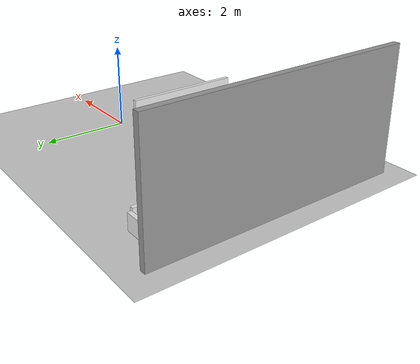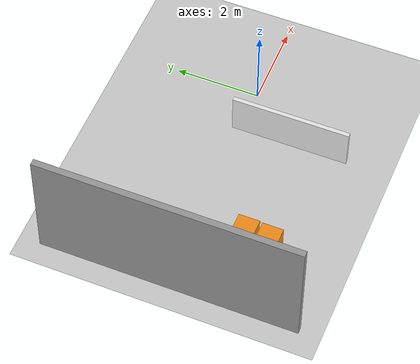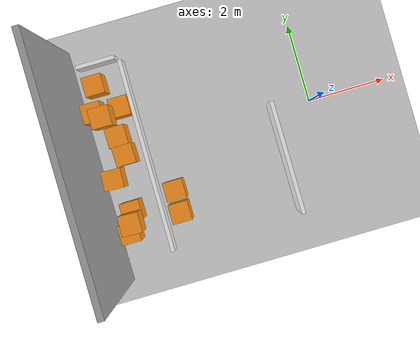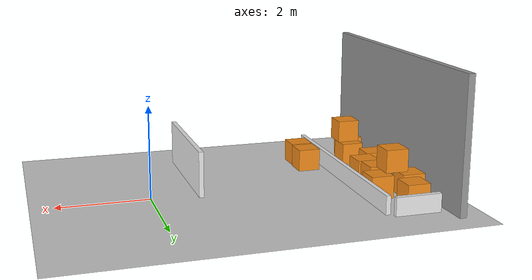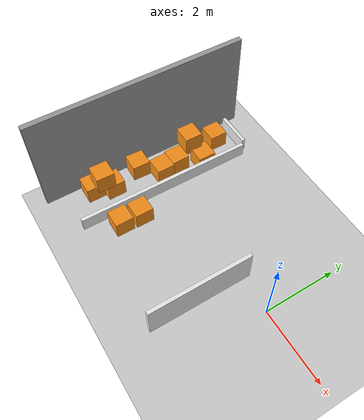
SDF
<sdf version="1.6">
 <world name="default">
  <model name="ground_plane">
   <static>1</static>
   <link name="link">
    <collision name="collision">
     <geometry><plane><normal>0 0 1</normal><size>100 100</size></plane></geometry>
     <surface>
      <contact><collide_bitmask>65535</collide_bitmask></contact>
      <friction><ode><mu>100</mu><mu2>50</mu2></ode></friction>
     </surface>
    </collision>
    <visual name="visual">
     <cast_shadows>0</cast_shadows>
     <geometry><plane><normal>0 0 1</normal><size>100 100</size></plane></geometry>
     <material>
      <script><uri>file://media/materials/scripts/gazebo.material</uri><name>Gazebo/Grey</name></script>
     </material>
    </visual>
   </link>
  </model>
  <model name="nrsl">
   <link name="Wall_3">
    <pose>-5.41 2.97 0 0 0 -1.5708</pose>
    <visual name="Wall_3_Visual">
     <pose>0 0 1.45 0 -0 0</pose>
     <geometry><box><size>6.09 0.15 2.9</size></box></geometry>
     <material>
      <script><uri>file://media/materials/scripts/gazebo.material</uri><name>Gazebo/Grey</name></script>
      <ambient>1 1 1 1</ambient>
     </material>
     <meta><layer>0</layer></meta>
    </visual>
    <collision name="Wall_3_Collision">
     <pose>0 0 1.45 0 -0 0</pose>
     <geometry><box><size>6.09 0.15 2.9</size></box></geometry>
     <surface>
      <friction>
       <ode><mu>1</mu><mu2>1</mu2><fdir1>0 0 0</fdir1><slip1>0</slip1><slip2>0</slip2></ode>
       <torsional>
        <coefficient>1</coefficient>
        <patch_radius>0</patch_radius>
        <surface_radius>0</surface_radius>
        <use_patch_radius>1</use_patch_radius>
        <ode><slip>0</slip></ode>
       </torsional>
      </friction>
      <bounce><restitution_coefficient>0</restitution_coefficient><threshold>1e+06</threshold></bounce>
      <contact>
       <collide_without_contact>0</collide_without_contact>
       <collide_without_contact_bitmask>1</collide_without_contact_bitmask>
       <collide_bitmask>1</collide_bitmask>
       <ode>
        <soft_cfm>0</soft_cfm>
        <soft_erp>0.2</soft_erp>
        <kp>1e+13</kp>
        <kd>1</kd>
        <max_vel>0.01</max_vel>
        <min_depth>0</min_depth>
       </ode>
       <bullet>
        <split_impulse>1</split_impulse>
        <split_impulse_penetration_threshold>-0.01</split_impulse_penetration_threshold>
        <soft_cfm>0</soft_cfm>
        <soft_erp>0.2</soft_erp>
        <kp>1e+13</kp>
        <kd>1</kd>
       </bullet>
      </contact>
     </surface>
    </collision>
   </link>
   <static>1</static>
   <pose>-0.282297 -3.10716 0 0 -0 0</pose>
  </model>
  <model name="fence1_1">
   <link name="link">
    <inertial>
     <mass>1</mass>
     <inertia>
      <ixx>0.166667</ixx>
      <ixy>0</ixy>
      <ixz>0</ixz>
      <iyy>0.166667</iyy>
      <iyz>0</iyz>
      <izz>0.166667</izz>
     </inertia>
    </inertial>
    <visual name="visual">
     <geometry><box><size>1 0.1 0.4</size></box></geometry>
     <material>
      <script><name>Gazebo/White</name><uri>file://media/materials/scripts/gazebo.material</uri></script>
     </material>
     <pose>0 0 0.2 0 -0 0</pose>
    </visual>
    <collision name="collision">
     <pose>0 0 0.2 0 -0 0</pose>
     <geometry><box><size>1 0.1 0.4</size></box></geometry>
     <surface>
      <friction>
       <ode><mu>1</mu><mu2>1</mu2><fdir1>0 0 0</fdir1><slip1>0</slip1><slip2>0</slip2></ode>
       <torsional>
        <coefficient>1</coefficient>
        <patch_radius>0</patch_radius>
        <surface_radius>0</surface_radius>
        <use_patch_radius>1</use_patch_radius>
        <ode><slip>0</slip></ode>
       </torsional>
      </friction>
      <bounce><restitution_coefficient>0</restitution_coefficient><threshold>1e+06</threshold></bounce>
      <contact>
       <collide_without_contact>0</collide_without_contact>
       <collide_without_contact_bitmask>1</collide_without_contact_bitmask>
       <collide_bitmask>1</collide_bitmask>
       <ode>
        <soft_cfm>0</soft_cfm>
        <soft_erp>0.2</soft_erp>
        <kp>1e+13</kp>
        <kd>1</kd>
        <max_vel>0.01</max_vel>
        <min_depth>0</min_depth>
       </ode>
       <bullet>
        <split_impulse>1</split_impulse>
        <split_impulse_penetration_threshold>-0.01</split_impulse_penetration_threshold>
        <soft_cfm>0</soft_cfm>
        <soft_erp>0.2</soft_erp>
        <kp>1e+13</kp>
        <kd>1</kd>
       </bullet>
      </contact>
     </surface>
    </collision>
   </link>
   <static>0</static>
   <pose>-4.95728 2.40507 -2e-06 0 5e-06 0</pose>
  </model>
  <model name="box_0">
   <link name="link">
    <inertial>
     <mass>1</mass>
     <inertia>
      <ixx>0.166667</ixx>
      <ixy>0</ixy>
      <ixz>0</ixz>
      <iyy>0.166667</iyy>
      <iyz>0</iyz>
      <izz>0.166667</izz>
     </inertia>
    </inertial>
    <visual name="visual">
     <geometry><box><size>0.5 0.5 0.5</size></box></geometry>
     <material>
      <script><name>Gazebo/Orange</name><uri>file://media/materials/scripts/gazebo.material</uri></script>
     </material>
     <pose>0 0 0.25 0 -0 0</pose>
    </visual>
    <collision name="collision">
     <pose>0 0 0.25 0 -0 0</pose>
     <geometry><box><size>0.5 0.5 0.5</size></box></geometry>
     <surface>
      <friction>
       <ode><mu>1</mu><mu2>1</mu2><fdir1>0 0 0</fdir1><slip1>0</slip1><slip2>0</slip2></ode>
       <torsional>
        <coefficient>1</coefficient>
        <patch_radius>0</patch_radius>
        <surface_radius>0</surface_radius>
        <use_patch_radius>1</use_patch_radius>
        <ode><slip>0</slip></ode>
       </torsional>
      </friction>
      <bounce><restitution_coefficient>0</restitution_coefficient><threshold>1e+06</threshold></bounce>
      <contact>
       <collide_without_contact>0</collide_without_contact>
       <collide_without_contact_bitmask>1</collide_without_contact_bitmask>
       <collide_bitmask>1</collide_bitmask>
       <ode>
        <soft_cfm>0</soft_cfm>
        <soft_erp>0.2</soft_erp>
        <kp>1e+13</kp>
        <kd>1</kd>
        <max_vel>0.01</max_vel>
        <min_depth>0</min_depth>
       </ode>
       <bullet>
        <split_impulse>1</split_impulse>
        <split_impulse_penetration_threshold>-0.01</split_impulse_penetration_threshold>
        <soft_cfm>0</soft_cfm>
        <soft_erp>0.2</soft_erp>
        <kp>1e+13</kp>
        <kd>1</kd>
       </bullet>
      </contact>
     </surface>
    </collision>
   </link>
   <static>0</static>
   <pose>-5.29935 -1.94691 -1e-05 -0 -0 -0.00029</pose>
  </model>
  <model name="box_1">
   <link name="link">
    <inertial>
     <mass>1</mass>
     <inertia>
      <ixx>0.166667</ixx>
      <ixy>0</ixy>
      <ixz>0</ixz>
      <iyy>0.166667</iyy>
      <iyz>0</iyz>
      <izz>0.166667</izz>
     </inertia>
    </inertial>
    <visual name="visual">
     <geometry><box><size>0.5 0.5 0.5</size></box></geometry>
     <material>
      <script><name>Gazebo/Orange</name><uri>file://media/materials/scripts/gazebo.material</uri></script>
     </material>
     <pose>0 0 0.25 0 -0 0</pose>
    </visual>
    <collision name="collision">
     <pose>0 0 0.25 0 -0 0</pose>
     <geometry><box><size>0.5 0.5 0.5</size></box></geometry>
     <surface>
      <friction>
       <ode><mu>1</mu><mu2>1</mu2><fdir1>0 0 0</fdir1><slip1>0</slip1><slip2>0</slip2></ode>
       <torsional>
        <coefficient>1</coefficient>
        <patch_radius>0</patch_radius>
        <surface_radius>0</surface_radius>
        <use_patch_radius>1</use_patch_radius>
        <ode><slip>0</slip></ode>
       </torsional>
      </friction>
      <bounce><restitution_coefficient>0</restitution_coefficient><threshold>1e+06</threshold></bounce>
      <contact>
       <collide_without_contact>0</collide_without_contact>
       <collide_without_contact_bitmask>1</collide_without_contact_bitmask>
       <collide_bitmask>1</collide_bitmask>
       <ode>
        <soft_cfm>0</soft_cfm>
        <soft_erp>0.2</soft_erp>
        <kp>1e+13</kp>
        <kd>1</kd>
        <max_vel>0.01</max_vel>
        <min_depth>0</min_depth>
       </ode>
       <bullet>
        <split_impulse>1</split_impulse>
        <split_impulse_penetration_threshold>-0.01</split_impulse_penetration_threshold>
        <soft_cfm>0</soft_cfm>
        <soft_erp>0.2</soft_erp>
        <kp>1e+13</kp>
        <kd>1</kd>
       </bullet>
      </contact>
     </surface>
    </collision>
   </link>
   <static>0</static>
   <pose>-5.10577 -1.43648 -3e-06 0 1.1e-05 0.000722</pose>
  </model>
  <model name="box_3">
   <link name="link">
    <inertial>
     <mass>1</mass>
     <inertia>
      <ixx>0.166667</ixx>
      <ixy>0</ixy>
      <ixz>0</ixz>
      <iyy>0.166667</iyy>
      <iyz>0</iyz>
      <izz>0.166667</izz>
     </inertia>
    </inertial>
    <visual name="visual">
     <geometry><box><size>0.5 0.5 0.5</size></box></geometry>
     <material>
      <script><name>Gazebo/Orange</name><uri>file://media/materials/scripts/gazebo.material</uri></script>
     </material>
     <pose>0 0 0.25 0 -0 0</pose>
    </visual>
    <collision name="collision">
     <pose>0 0 0.25 0 -0 0</pose>
     <geometry><box><size>0.5 0.5 0.5</size></box></geometry>
     <surface>
      <friction>
       <ode><mu>1</mu><mu2>1</mu2><fdir1>0 0 0</fdir1><slip1>0</slip1><slip2>0</slip2></ode>
       <torsional>
        <coefficient>1</coefficient>
        <patch_radius>0</patch_radius>
        <surface_radius>0</surface_radius>
        <use_patch_radius>1</use_patch_radius>
        <ode><slip>0</slip></ode>
       </torsional>
      </friction>
      <bounce><restitution_coefficient>0</restitution_coefficient><threshold>1e+06</threshold></bounce>
      <contact>
       <collide_without_contact>0</collide_without_contact>
       <collide_without_contact_bitmask>1</collide_without_contact_bitmask>
       <collide_bitmask>1</collide_bitmask>
       <ode>
        <soft_cfm>0</soft_cfm>
        <soft_erp>0.2</soft_erp>
        <kp>1e+13</kp>
        <kd>1</kd>
        <max_vel>0.01</max_vel>
        <min_depth>0</min_depth>
       </ode>
       <bullet>
        <split_impulse>1</split_impulse>
        <split_impulse_penetration_threshold>-0.01</split_impulse_penetration_threshold>
        <soft_cfm>0</soft_cfm>
        <soft_erp>0.2</soft_erp>
        <kp>1e+13</kp>
        <kd>1</kd>
       </bullet>
      </contact>
     </surface>
    </collision>
   </link>
   <static>0</static>
   <pose>-5.36531 1.2018 -0 0 0 -0.007949</pose>
  </model>
  <model name="box_4">
   <link name="link">
    <inertial>
     <mass>1</mass>
     <inertia>
      <ixx>0.166667</ixx>
      <ixy>0</ixy>
      <ixz>0</ixz>
      <iyy>0.166667</iyy>
      <iyz>0</iyz>
      <izz>0.166667</izz>
     </inertia>
    </inertial>
    <visual name="visual">
     <geometry><box><size>0.5 0.5 0.5</size></box></geometry>
     <material>
      <script><name>Gazebo/Orange</name><uri>file://media/materials/scripts/gazebo.material</uri></script>
     </material>
     <pose>0 0 0.25 0 -0 0</pose>
    </visual>
    <collision name="collision">
     <pose>0 0 0.25 0 -0 0</pose>
     <geometry><box><size>0.5 0.5 0.5</size></box></geometry>
     <surface>
      <friction>
       <ode><mu>1</mu><mu2>1</mu2><fdir1>0 0 0</fdir1><slip1>0</slip1><slip2>0</slip2></ode>
       <torsional>
        <coefficient>1</coefficient>
        <patch_radius>0</patch_radius>
        <surface_radius>0</surface_radius>
        <use_patch_radius>1</use_patch_radius>
        <ode><slip>0</slip></ode>
       </torsional>
      </friction>
      <bounce><restitution_coefficient>0</restitution_coefficient><threshold>1e+06</threshold></bounce>
      <contact>
       <collide_without_contact>0</collide_without_contact>
       <collide_without_contact_bitmask>1</collide_without_contact_bitmask>
       <collide_bitmask>1</collide_bitmask>
       <ode>
        <soft_cfm>0</soft_cfm>
        <soft_erp>0.2</soft_erp>
        <kp>1e+13</kp>
        <kd>1</kd>
        <max_vel>0.01</max_vel>
        <min_depth>0</min_depth>
       </ode>
       <bullet>
        <split_impulse>1</split_impulse>
        <split_impulse_penetration_threshold>-0.01</split_impulse_penetration_threshold>
        <soft_cfm>0</soft_cfm>
        <soft_erp>0.2</soft_erp>
        <kp>1e+13</kp>
        <kd>1</kd>
       </bullet>
      </contact>
     </surface>
    </collision>
   </link>
   <static>0</static>
   <pose>-4.66657 1.15749 -5.9e-05 0 0 -0.00751</pose>
  </model>
  <model name="box_2">
   <link name="link">
    <inertial>
     <mass>1</mass>
     <inertia>
      <ixx>0.166667</ixx>
      <ixy>0</ixy>
      <ixz>0</ixz>
      <iyy>0.166667</iyy>
      <iyz>0</iyz>
      <izz>0.166667</izz>
     </inertia>
    </inertial>
    <visual name="visual">
     <geometry><box><size>0.5 0.5 0.5</size></box></geometry>
     <material>
      <script><name>Gazebo/Orange</name><uri>file://media/materials/scripts/gazebo.material</uri></script>
     </material>
     <pose>0 0 0.25 0 -0 0</pose>
    </visual>
    <collision name="collision">
     <pose>0 0 0.25 0 -0 0</pose>
     <geometry><box><size>0.5 0.5 0.5</size></box></geometry>
     <surface>
      <friction>
       <ode><mu>1</mu><mu2>1</mu2><fdir1>0 0 0</fdir1><slip1>0</slip1><slip2>0</slip2></ode>
       <torsional>
        <coefficient>1</coefficient>
        <patch_radius>0</patch_radius>
        <surface_radius>0</surface_radius>
        <use_patch_radius>1</use_patch_radius>
        <ode><slip>0</slip></ode>
       </torsional>
      </friction>
      <bounce><restitution_coefficient>0</restitution_coefficient><threshold>1e+06</threshold></bounce>
      <contact>
       <collide_without_contact>0</collide_without_contact>
       <collide_without_contact_bitmask>1</collide_without_contact_bitmask>
       <collide_bitmask>1</collide_bitmask>
       <ode>
        <soft_cfm>0</soft_cfm>
        <soft_erp>0.2</soft_erp>
        <kp>1e+13</kp>
        <kd>1</kd>
        <max_vel>0.01</max_vel>
        <min_depth>0</min_depth>
       </ode>
       <bullet>
        <split_impulse>1</split_impulse>
        <split_impulse_penetration_threshold>-0.01</split_impulse_penetration_threshold>
        <soft_cfm>0</soft_cfm>
        <soft_erp>0.2</soft_erp>
        <kp>1e+13</kp>
        <kd>1</kd>
       </bullet>
      </contact>
     </surface>
    </collision>
   </link>
   <static>0</static>
   <pose>-5.14223 1.85055 -6e-06 -2.3e-05 -0 -0.000152</pose>
  </model>
  <model name="box_5">
   <link name="link">
    <inertial>
     <mass>1</mass>
     <inertia>
      <ixx>0.166667</ixx>
      <ixy>0</ixy>
      <ixz>0</ixz>
      <iyy>0.166667</iyy>
      <iyz>0</iyz>
      <izz>0.166667</izz>
     </inertia>
    </inertial>
    <visual name="visual">
     <geometry><box><size>0.5 0.5 0.5</size></box></geometry>
     <material>
      <script><name>Gazebo/Orange</name><uri>file://media/materials/scripts/gazebo.material</uri></script>
     </material>
     <pose>0 0 0.25 0 -0 0</pose>
    </visual>
    <collision name="collision">
     <pose>0 0 0.25 0 -0 0</pose>
     <geometry><box><size>0.5 0.5 0.5</size></box></geometry>
     <surface>
      <friction>
       <ode><mu>1</mu><mu2>1</mu2><fdir1>0 0 0</fdir1><slip1>0</slip1><slip2>0</slip2></ode>
       <torsional>
        <coefficient>1</coefficient>
        <patch_radius>0</patch_radius>
        <surface_radius>0</surface_radius>
        <use_patch_radius>1</use_patch_radius>
        <ode><slip>0</slip></ode>
       </torsional>
      </friction>
      <bounce><restitution_coefficient>0</restitution_coefficient><threshold>1e+06</threshold></bounce>
      <contact>
       <collide_without_contact>0</collide_without_contact>
       <collide_without_contact_bitmask>1</collide_without_contact_bitmask>
       <collide_bitmask>1</collide_bitmask>
       <ode>
        <soft_cfm>0</soft_cfm>
        <soft_erp>0.2</soft_erp>
        <kp>1e+13</kp>
        <kd>1</kd>
        <max_vel>0.01</max_vel>
        <min_depth>0</min_depth>
       </ode>
       <bullet>
        <split_impulse>1</split_impulse>
        <split_impulse_penetration_threshold>-0.01</split_impulse_penetration_threshold>
        <soft_cfm>0</soft_cfm>
        <soft_erp>0.2</soft_erp>
        <kp>1e+13</kp>
        <kd>1</kd>
       </bullet>
      </contact>
     </surface>
    </collision>
   </link>
   <static>0</static>
   <pose>-4.93993 0.467553 -2.6e-05 -1e-05 1e-06 0.013925</pose>
  </model>
  <model name="box_6">
   <link name="link">
    <inertial>
     <mass>1</mass>
     <inertia>
      <ixx>0.166667</ixx>
      <ixy>0</ixy>
      <ixz>0</ixz>
      <iyy>0.166667</iyy>
      <iyz>0</iyz>
      <izz>0.166667</izz>
     </inertia>
    </inertial>
    <visual name="visual">
     <geometry><box><size>0.5 0.5 0.5</size></box></geometry>
     <material>
      <script><name>Gazebo/Orange</name><uri>file://media/materials/scripts/gazebo.material</uri></script>
     </material>
     <pose>0 0 0.25 0 -0 0</pose>
    </visual>
    <collision name="collision">
     <pose>0 0 0.25 0 -0 0</pose>
     <geometry><box><size>0.5 0.5 0.5</size></box></geometry>
     <surface>
      <friction>
       <ode><mu>1</mu><mu2>1</mu2><fdir1>0 0 0</fdir1><slip1>0</slip1><slip2>0</slip2></ode>
       <torsional>
        <coefficient>1</coefficient>
        <patch_radius>0</patch_radius>
        <surface_radius>0</surface_radius>
        <use_patch_radius>1</use_patch_radius>
        <ode><slip>0</slip></ode>
       </torsional>
      </friction>
      <bounce><restitution_coefficient>0</restitution_coefficient><threshold>1e+06</threshold></bounce>
      <contact>
       <collide_without_contact>0</collide_without_contact>
       <collide_without_contact_bitmask>1</collide_without_contact_bitmask>
       <collide_bitmask>1</collide_bitmask>
       <ode>
        <soft_cfm>0</soft_cfm>
        <soft_erp>0.2</soft_erp>
        <kp>1e+13</kp>
        <kd>1</kd>
        <max_vel>0.01</max_vel>
        <min_depth>0</min_depth>
       </ode>
       <bullet>
        <split_impulse>1</split_impulse>
        <split_impulse_penetration_threshold>-0.01</split_impulse_penetration_threshold>
        <soft_cfm>0</soft_cfm>
        <soft_erp>0.2</soft_erp>
        <kp>1e+13</kp>
        <kd>1</kd>
       </bullet>
      </contact>
     </surface>
    </collision>
   </link>
   <static>0</static>
   <pose>-5.33455 -0.542764 -6e-06 0 -2.6e-05 -0.040836</pose>
  </model>
  <model name="box_1_0">
   <link name="link">
    <inertial>
     <mass>1</mass>
     <inertia>
      <ixx>0.166667</ixx>
      <ixy>0</ixy>
      <ixz>0</ixz>
      <iyy>0.166667</iyy>
      <iyz>0</iyz>
      <izz>0.166667</izz>
     </inertia>
    </inertial>
    <visual name="visual">
     <geometry><box><size>0.5 0.5 0.5</size></box></geometry>
     <material>
      <script><name>Gazebo/Orange</name><uri>file://media/materials/scripts/gazebo.material</uri></script>
     </material>
     <pose>0 0 0.25 0 -0 0</pose>
    </visual>
    <collision name="collision">
     <pose>0 0 0.25 0 -0 0</pose>
     <geometry><box><size>0.5 0.5 0.5</size></box></geometry>
     <surface>
      <friction>
       <ode><mu>1</mu><mu2>1</mu2><fdir1>0 0 0</fdir1><slip1>0</slip1><slip2>0</slip2></ode>
       <torsional>
        <coefficient>1</coefficient>
        <patch_radius>0</patch_radius>
        <surface_radius>0</surface_radius>
        <use_patch_radius>1</use_patch_radius>
        <ode><slip>0</slip></ode>
       </torsional>
      </friction>
      <bounce><restitution_coefficient>0</restitution_coefficient><threshold>1e+06</threshold></bounce>
      <contact>
       <collide_without_contact>0</collide_without_contact>
       <collide_without_contact_bitmask>1</collide_without_contact_bitmask>
       <collide_bitmask>1</collide_bitmask>
       <ode>
        <soft_cfm>0</soft_cfm>
        <soft_erp>0.2</soft_erp>
        <kp>1e+13</kp>
        <kd>1</kd>
        <max_vel>0.01</max_vel>
        <min_depth>0</min_depth>
       </ode>
       <bullet>
        <split_impulse>1</split_impulse>
        <split_impulse_penetration_threshold>-0.01</split_impulse_penetration_threshold>
        <soft_cfm>0</soft_cfm>
        <soft_erp>0.2</soft_erp>
        <kp>1e+13</kp>
        <kd>1</kd>
       </bullet>
      </contact>
     </surface>
    </collision>
   </link>
   <static>0</static>
   <pose>-4.88602 -0.032148 -0 -1e-06 1e-06 0.013203</pose>
  </model>
  <model name="box_1_1">
   <link name="link">
    <inertial>
     <mass>1</mass>
     <inertia>
      <ixx>0.166667</ixx>
      <ixy>0</ixy>
      <ixz>0</ixz>
      <iyy>0.166667</iyy>
      <iyz>0</iyz>
      <izz>0.166667</izz>
     </inertia>
    </inertial>
    <visual name="visual">
     <geometry><box><size>0.5 0.5 0.5</size></box></geometry>
     <material>
      <script><name>Gazebo/Orange</name><uri>file://media/materials/scripts/gazebo.material</uri></script>
     </material>
     <pose>0 0 0.75 0 -0 0</pose>
    </visual>
    <collision name="collision">
     <pose>0 0 0.75 0 -0 0</pose>
     <geometry><box><size>0.5 0.5 0.5</size></box></geometry>
     <surface>
      <friction>
       <ode><mu>1</mu><mu2>1</mu2><fdir1>0 0 0</fdir1><slip1>0</slip1><slip2>0</slip2></ode>
       <torsional>
        <coefficient>1</coefficient>
        <patch_radius>0</patch_radius>
        <surface_radius>0</surface_radius>
        <use_patch_radius>1</use_patch_radius>
        <ode><slip>0</slip></ode>
       </torsional>
      </friction>
      <bounce><restitution_coefficient>0</restitution_coefficient><threshold>1e+06</threshold></bounce>
      <contact>
       <collide_without_contact>0</collide_without_contact>
       <collide_without_contact_bitmask>1</collide_without_contact_bitmask>
       <collide_bitmask>1</collide_bitmask>
       <ode>
        <soft_cfm>0</soft_cfm>
        <soft_erp>0.2</soft_erp>
        <kp>1e+13</kp>
        <kd>1</kd>
        <max_vel>0.01</max_vel>
        <min_depth>0</min_depth>
       </ode>
       <bullet>
        <split_impulse>1</split_impulse>
        <split_impulse_penetration_threshold>-0.01</split_impulse_penetration_threshold>
        <soft_cfm>0</soft_cfm>
        <soft_erp>0.2</soft_erp>
        <kp>1e+13</kp>
        <kd>1</kd>
       </bullet>
      </contact>
     </surface>
    </collision>
   </link>
   <static>0</static>
   <pose>-5.07554 0.970381 -6e-06 3.2e-05 2.5e-05 -0.013753</pose>
  </model>
  <model name="box_1_2">
   <link name="link">
    <inertial>
     <mass>1</mass>
     <inertia>
      <ixx>0.166667</ixx>
      <ixy>0</ixy>
      <ixz>0</ixz>
      <iyy>0.166667</iyy>
      <iyz>0</iyz>
      <izz>0.166667</izz>
     </inertia>
    </inertial>
    <visual name="visual">
     <geometry><box><size>0.5 0.5 0.5</size></box></geometry>
     <material>
      <script><name>Gazebo/Orange</name><uri>file://media/materials/scripts/gazebo.material</uri></script>
     </material>
     <pose>0 0 0.75 0 -0 0</pose>
    </visual>
    <collision name="collision">
     <pose>0 0 0.75 0 -0 0</pose>
     <geometry><box><size>0.5 0.5 0.5</size></box></geometry>
     <surface>
      <friction>
       <ode><mu>1</mu><mu2>1</mu2><fdir1>0 0 0</fdir1><slip1>0</slip1><slip2>0</slip2></ode>
       <torsional>
        <coefficient>1</coefficient>
        <patch_radius>0</patch_radius>
        <surface_radius>0</surface_radius>
        <use_patch_radius>1</use_patch_radius>
        <ode><slip>0</slip></ode>
       </torsional>
      </friction>
      <bounce><restitution_coefficient>0</restitution_coefficient><threshold>1e+06</threshold></bounce>
      <contact>
       <collide_without_contact>0</collide_without_contact>
       <collide_without_contact_bitmask>1</collide_without_contact_bitmask>
       <collide_bitmask>1</collide_bitmask>
       <ode>
        <soft_cfm>0</soft_cfm>
        <soft_erp>0.2</soft_erp>
        <kp>1e+13</kp>
        <kd>1</kd>
        <max_vel>0.01</max_vel>
        <min_depth>0</min_depth>
       </ode>
       <bullet>
        <split_impulse>1</split_impulse>
        <split_impulse_penetration_threshold>-0.01</split_impulse_penetration_threshold>
        <soft_cfm>0</soft_cfm>
        <soft_erp>0.2</soft_erp>
        <kp>1e+13</kp>
        <kd>1</kd>
       </bullet>
      </contact>
     </surface>
    </collision>
   </link>
   <static>0</static>
   <pose>-5.10088 -1.68539 -4e-06 3.1e-05 -1e-05 -0.026227</pose>
  </model>
  <model name="box">
   <link name="link">
    <inertial>
     <mass>1</mass>
     <inertia>
      <ixx>0.166667</ixx>
      <ixy>0</ixy>
      <ixz>0</ixz>
      <iyy>0.166667</iyy>
      <iyz>0</iyz>
      <izz>0.166667</izz>
     </inertia>
    </inertial>
    <visual name="visual">
     <geometry><box><size>0.5 0.5 0.5</size></box></geometry>
     <material>
      <script><name>Gazebo/Orange</name><uri>file://media/materials/scripts/gazebo.material</uri></script>
     </material>
     <pose>0 0 0.25 0 -0 0</pose>
    </visual>
    <collision name="collision">
     <pose>0 0 0.25 0 -0 0</pose>
     <geometry><box><size>0.5 0.5 0.5</size></box></geometry>
     <surface>
      <friction>
       <ode><mu>1</mu><mu2>1</mu2><fdir1>0 0 0</fdir1><slip1>0</slip1><slip2>0</slip2></ode>
       <torsional>
        <coefficient>1</coefficient>
        <patch_radius>0</patch_radius>
        <surface_radius>0</surface_radius>
        <use_patch_radius>1</use_patch_radius>
        <ode><slip>0</slip></ode>
       </torsional>
      </friction>
      <bounce><restitution_coefficient>0</restitution_coefficient><threshold>1e+06</threshold></bounce>
      <contact>
       <collide_without_contact>0</collide_without_contact>
       <collide_without_contact_bitmask>1</collide_without_contact_bitmask>
       <collide_bitmask>1</collide_bitmask>
       <ode>
        <soft_cfm>0</soft_cfm>
        <soft_erp>0.2</soft_erp>
        <kp>1e+13</kp>
        <kd>1</kd>
        <max_vel>0.01</max_vel>
        <min_depth>0</min_depth>
       </ode>
       <bullet>
        <split_impulse>1</split_impulse>
        <split_impulse_penetration_threshold>-0.01</split_impulse_penetration_threshold>
        <soft_cfm>0</soft_cfm>
        <soft_erp>0.2</soft_erp>
        <kp>1e+13</kp>
        <kd>1</kd>
       </bullet>
      </contact>
     </surface>
    </collision>
   </link>
   <static>0</static>
   <pose>-3.9436 -1.79604 -0 0 -0 0</pose>
  </model>
  <model name="box_7">
   <link name="link">
    <inertial>
     <mass>1</mass>
     <inertia>
      <ixx>0.166667</ixx>
      <ixy>0</ixy>
      <ixz>0</ixz>
      <iyy>0.166667</iyy>
      <iyz>0</iyz>
      <izz>0.166667</izz>
     </inertia>
    </inertial>
    <visual name="visual">
     <geometry><box><size>0.5 0.5 0.5</size></box></geometry>
     <material>
      <script><name>Gazebo/Orange</name><uri>file://media/materials/scripts/gazebo.material</uri></script>
     </material>
     <pose>0 0 0.25 0 -0 0</pose>
    </visual>
    <collision name="collision">
     <pose>0 0 0.25 0 -0 0</pose>
     <geometry><box><size>0.5 0.5 0.5</size></box></geometry>
     <surface>
      <friction>
       <ode><mu>1</mu><mu2>1</mu2><fdir1>0 0 0</fdir1><slip1>0</slip1><slip2>0</slip2></ode>
       <torsional>
        <coefficient>1</coefficient>
        <patch_radius>0</patch_radius>
        <surface_radius>0</surface_radius>
        <use_patch_radius>1</use_patch_radius>
        <ode><slip>0</slip></ode>
       </torsional>
      </friction>
      <bounce><restitution_coefficient>0</restitution_coefficient><threshold>1e+06</threshold></bounce>
      <contact>
       <collide_without_contact>0</collide_without_contact>
       <collide_without_contact_bitmask>1</collide_without_contact_bitmask>
       <collide_bitmask>1</collide_bitmask>
       <ode>
        <soft_cfm>0</soft_cfm>
        <soft_erp>0.2</soft_erp>
        <kp>1e+13</kp>
        <kd>1</kd>
        <max_vel>0.01</max_vel>
        <min_depth>0</min_depth>
       </ode>
       <bullet>
        <split_impulse>1</split_impulse>
        <split_impulse_penetration_threshold>-0.01</split_impulse_penetration_threshold>
        <soft_cfm>0</soft_cfm>
        <soft_erp>0.2</soft_erp>
        <kp>1e+13</kp>
        <kd>1</kd>
       </bullet>
      </contact>
     </surface>
    </collision>
   </link>
   <static>0</static>
   <pose>-3.92492 -1.23113 -0 0 -0 -3.7e-05</pose>
  </model>
  <model name="fence">
   <link name="link">
    <inertial>
     <mass>1</mass>
     <inertia>
      <ixx>0.166667</ixx>
      <ixy>0</ixy>
      <ixz>0</ixz>
      <iyy>0.166667</iyy>
      <iyz>0</iyz>
      <izz>0.166667</izz>
     </inertia>
    </inertial>
    <pose>0 0 0 0 -0 1.57</pose>
    <visual name="visual">
     <geometry><box><size>5 0.1 0.4</size></box></geometry>
     <material>
      <script><name>Gazebo/White</name><uri>file://media/materials/scripts/gazebo.material</uri></script>
     </material>
     <pose>0 0 0.2 0 -0 0</pose>
    </visual>
    <collision name="collision">
     <pose>0 0 0.2 0 -0 0</pose>
     <geometry><box><size>5 0.1 0.4</size></box></geometry>
     <surface>
      <friction>
       <ode><mu>1</mu><mu2>1</mu2><fdir1>0 0 0</fdir1><slip1>0</slip1><slip2>0</slip2></ode>
       <torsional>
        <coefficient>1</coefficient>
        <patch_radius>0</patch_radius>
        <surface_radius>0</surface_radius>
        <use_patch_radius>1</use_patch_radius>
        <ode><slip>0</slip></ode>
       </torsional>
      </friction>
      <bounce><restitution_coefficient>0</restitution_coefficient><threshold>1e+06</threshold></bounce>
      <contact>
       <collide_without_contact>0</collide_without_contact>
       <collide_without_contact_bitmask>1</collide_without_contact_bitmask>
       <collide_bitmask>1</collide_bitmask>
       <ode>
        <soft_cfm>0</soft_cfm>
        <soft_erp>0.2</soft_erp>
        <kp>1e+13</kp>
        <kd>1</kd>
        <max_vel>0.01</max_vel>
        <min_depth>0</min_depth>
       </ode>
       <bullet>
        <split_impulse>1</split_impulse>
        <split_impulse_penetration_threshold>-0.01</split_impulse_penetration_threshold>
        <soft_cfm>0</soft_cfm>
        <soft_erp>0.2</soft_erp>
        <kp>1e+13</kp>
        <kd>1</kd>
       </bullet>
      </contact>
     </surface>
    </collision>
   </link>
   <static>0</static>
   <pose>-4.3761 -0.197227 -4e-06 2e-06 1.3e-05 -0.00637</pose>
  </model>
  <model name="obstacle">
   <link name="link">
    <inertial>
     <mass>1</mass>
     <inertia>
      <ixx>0.166667</ixx>
      <ixy>0</ixy>
      <ixz>0</ixz>
      <iyy>0.166667</iyy>
      <iyz>0</iyz>
      <izz>0.166667</izz>
     </inertia>
    </inertial>
    <visual name="visual">
     <geometry><box><size>0.1 2.8 1</size></box></geometry>
     <material>
      <script><name>Gazebo/White</name><uri>file://media/materials/scripts/gazebo.material</uri></script>
     </material>
     <pose>0 0 0.5 0 -0 0</pose>
    </visual>
    <collision name="collision">
     <pose>0 0 0.5 0 -0 0</pose>
     <geometry><box><size>0.1 2.8 1</size></box></geometry>
     <surface>
      <friction>
       <ode><mu>1</mu><mu2>1</mu2><fdir1>0 0 0</fdir1><slip1>0</slip1><slip2>0</slip2></ode>
       <torsional>
        <coefficient>1</coefficient>
        <patch_radius>0</patch_radius>
        <surface_radius>0</surface_radius>
        <use_patch_radius>1</use_patch_radius>
        <ode><slip>0</slip></ode>
       </torsional>
      </friction>
      <bounce><restitution_coefficient>0</restitution_coefficient><threshold>1e+06</threshold></bounce>
      <contact>
       <collide_without_contact>0</collide_without_contact>
       <collide_without_contact_bitmask>1</collide_without_contact_bitmask>
       <collide_bitmask>1</collide_bitmask>
       <ode>
        <soft_cfm>0</soft_cfm>
        <soft_erp>0.2</soft_erp>
        <kp>1e+13</kp>
        <kd>1</kd>
        <max_vel>0.01</max_vel>
        <min_depth>0</min_depth>
       </ode>
       <bullet>
        <split_impulse>1</split_impulse>
        <split_impulse_penetration_threshold>-0.01</split_impulse_penetration_threshold>
        <soft_cfm>0</soft_cfm>
        <soft_erp>0.2</soft_erp>
        <kp>1e+13</kp>
        <kd>1</kd>
       </bullet>
      </contact>
     </surface>
    </collision>
   </link>
   <static>0</static>
   <pose>-1.04658 -1.19581 0 -1e-06 5e-06 0</pose>
  </model>
 </world>
</sdf>
